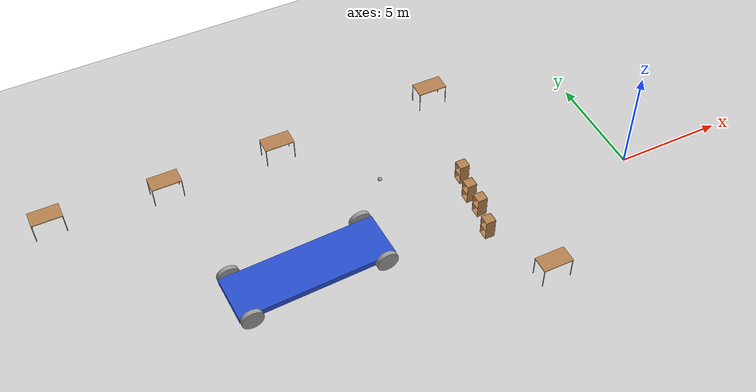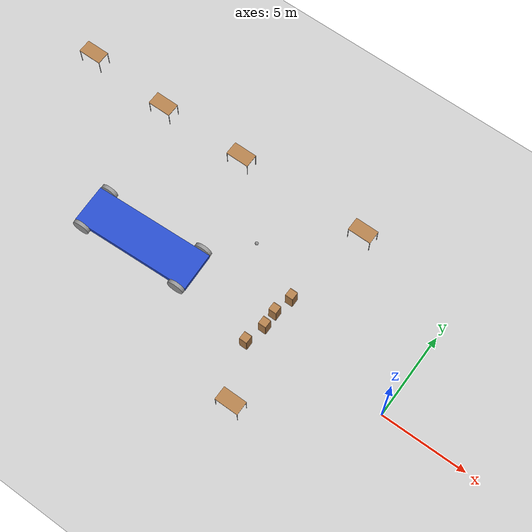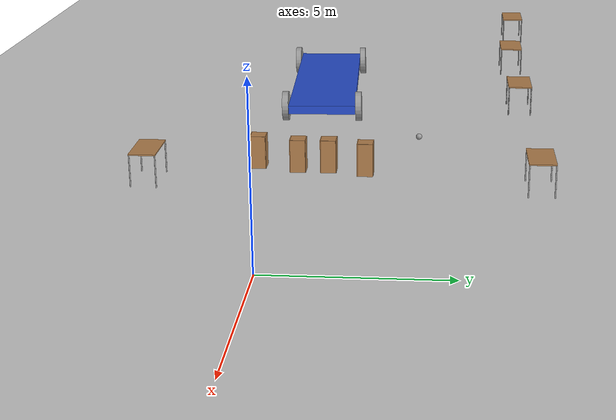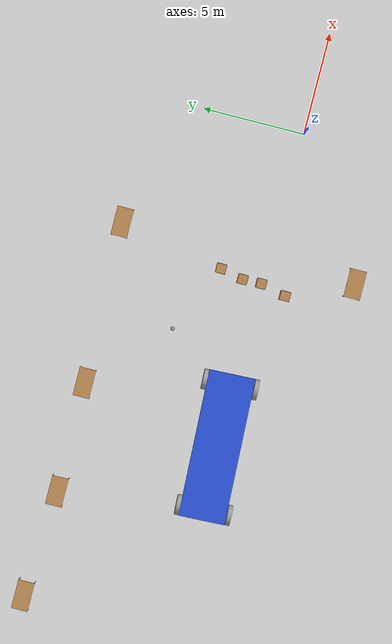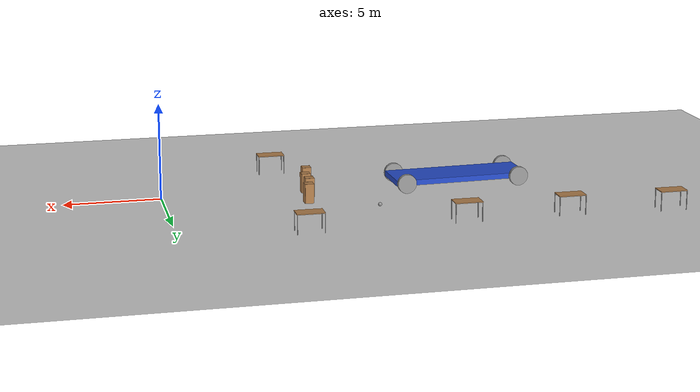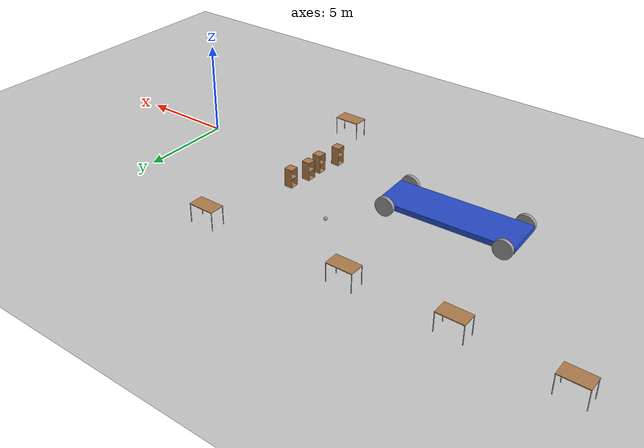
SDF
<sdf version="1.6">
 <world name="default">
  <model name="ground_plane">
   <static>1</static>
   <link name="link">
    <collision name="collision">
     <geometry><plane><normal>0 0 1</normal><size>100 100</size></plane></geometry>
     <surface><friction><ode><mu>100</mu><mu2>50</mu2></ode></friction></surface>
    </collision>
    <visual name="visual">
     <cast_shadows>0</cast_shadows>
     <geometry><plane><normal>0 0 1</normal><size>100 100</size></plane></geometry>
     <material>
      <script><uri>file://media/materials/scripts/gazebo.material</uri><name>Gazebo/Grey</name></script>
     </material>
    </visual>
   </link>
  </model>
  <model name="big_cart_0_clone">
   <link name="link_0">
    <inertial>
     <mass>4.6866</mass>
     <inertia><ixx>2.0216</ixx><ixy>0</ixy><ixz>0</ixz><iyy>20.0752</iyy><iyz>0</iyz><izz>22.0311</izz></inertia>
    </inertial>
    <visual name="visual">
     <geometry><box><size>7.16364 2.25661 0.28988</size></box></geometry>
     <material>
      <lighting>1</lighting>
      <script><uri>file://media/materials/scripts/gazebo.material</uri><name>Gazebo/Blue</name></script>
      <ambient>0.9 0.002 0 1</ambient>
      <diffuse>0.9 0.002 0.01 0.9</diffuse>
      <specular>0.01 0.01 0.01 1</specular>
      <emissive>0 0 0 1</emissive>
      <shader type="vertex"><normal_map>__default__</normal_map></shader>
     </material>
    </visual>
    <visual name="ModelPreview_0::link_0::visual_1">
     <geometry><box><size>7.16364 2.25661 0.28988</size></box></geometry>
     <material>
      <lighting>1</lighting>
      <script><uri>file://media/materials/scripts/gazebo.material</uri><name>Gazebo/Blue</name></script>
      <ambient>0.09 0.09 0.6 0.7</ambient>
      <diffuse>0.9 0.9 0.9 0.9</diffuse>
      <specular>0.01 0.01 0.01 1</specular>
      <emissive>0 0 0 1</emissive>
      <shader type="vertex"><normal_map>__default__</normal_map></shader>
     </material>
    </visual>
    <collision name="collision">
     <geometry><box><size>7.16364 2.25661 0.28988</size></box></geometry>
     <surface>
      <friction>
       <ode><mu>1</mu><mu2>1</mu2><fdir1>0 0 0</fdir1><slip1>0</slip1><slip2>0</slip2></ode>
       <torsional>
        <coefficient>1</coefficient>
        <patch_radius>0</patch_radius>
        <surface_radius>0</surface_radius>
        <use_patch_radius>1</use_patch_radius>
        <ode><slip>0</slip></ode>
       </torsional>
      </friction>
      <bounce><restitution_coefficient>0</restitution_coefficient><threshold>1e+06</threshold></bounce>
      <contact>
       <collide_without_contact>0</collide_without_contact>
       <collide_without_contact_bitmask>1</collide_without_contact_bitmask>
       <collide_bitmask>1</collide_bitmask>
       <ode>
        <soft_cfm>0</soft_cfm>
        <soft_erp>0.2</soft_erp>
        <kp>1e+13</kp>
        <kd>1</kd>
        <max_vel>0.01</max_vel>
        <min_depth>0</min_depth>
       </ode>
       <bullet>
        <split_impulse>1</split_impulse>
        <split_impulse_penetration_threshold>-0.01</split_impulse_penetration_threshold>
        <soft_cfm>0</soft_cfm>
        <soft_erp>0.2</soft_erp>
        <kp>1e+13</kp>
        <kd>1</kd>
       </bullet>
      </contact>
     </surface>
    </collision>
   </link>
   <link name="link_1_clone_clone_clone">
    <pose>-3.08182 1.24423 0 -1.59621 0 0</pose>
    <inertial>
     <mass>0.206504</mass>
     <inertia>
      <ixx>0.0136404</ixx>
      <ixy>0</ixy>
      <ixz>0</ixz>
      <iyy>0.0136404</iyy>
      <iyz>0</iyz>
      <izz>0.0258131</izz>
     </inertia>
    </inertial>
    <visual name="visual">
     <geometry><cylinder><radius>0.5</radius><length>0.206502</length></cylinder></geometry>
     <material>
      <lighting>1</lighting>
      <script><uri>file://media/materials/scripts/gazebo.material</uri><name>Gazebo/Grey</name></script>
      <ambient>0.5 0.5 0.5 1</ambient>
      <diffuse>0.9 0.9 0.9 1</diffuse>
      <specular>0.01 0.01 0.01 1</specular>
      <emissive>0 0 0 1</emissive>
      <shader type="vertex"><normal_map>__default__</normal_map></shader>
     </material>
    </visual>
    <collision name="collision">
     <geometry><cylinder><radius>0.5</radius><length>0.206502</length></cylinder></geometry>
     <surface>
      <friction>
       <ode><mu>1</mu><mu2>1</mu2><fdir1>0 0 0</fdir1><slip1>0</slip1><slip2>0</slip2></ode>
       <torsional>
        <coefficient>1</coefficient>
        <patch_radius>0</patch_radius>
        <surface_radius>0</surface_radius>
        <use_patch_radius>1</use_patch_radius>
        <ode><slip>0</slip></ode>
       </torsional>
      </friction>
      <bounce><restitution_coefficient>0</restitution_coefficient><threshold>1e+06</threshold></bounce>
      <contact>
       <collide_without_contact>0</collide_without_contact>
       <collide_without_contact_bitmask>1</collide_without_contact_bitmask>
       <collide_bitmask>1</collide_bitmask>
       <ode>
        <soft_cfm>0</soft_cfm>
        <soft_erp>0.2</soft_erp>
        <kp>1e+13</kp>
        <kd>1</kd>
        <max_vel>0.01</max_vel>
        <min_depth>0</min_depth>
       </ode>
       <bullet>
        <split_impulse>1</split_impulse>
        <split_impulse_penetration_threshold>-0.01</split_impulse_penetration_threshold>
        <soft_cfm>0</soft_cfm>
        <soft_erp>0.2</soft_erp>
        <kp>1e+13</kp>
        <kd>1</kd>
       </bullet>
      </contact>
     </surface>
    </collision>
   </link>
   <link name="link_1_clone_clone_clone_1">
    <pose>3.08182 -1.24423 0 -1.59621 0 0</pose>
    <inertial>
     <mass>0.206504</mass>
     <inertia>
      <ixx>0.0136404</ixx>
      <ixy>0</ixy>
      <ixz>0</ixz>
      <iyy>0.0136404</iyy>
      <iyz>0</iyz>
      <izz>0.0258131</izz>
     </inertia>
    </inertial>
    <visual name="visual">
     <geometry><cylinder><radius>0.5</radius><length>0.206502</length></cylinder></geometry>
     <material>
      <lighting>1</lighting>
      <script><uri>file://media/materials/scripts/gazebo.material</uri><name>Gazebo/Grey</name></script>
      <ambient>0.5 0.5 0.5 1</ambient>
      <diffuse>0.9 0.9 0.9 1</diffuse>
      <specular>0.01 0.01 0.01 1</specular>
      <emissive>0 0 0 1</emissive>
      <shader type="vertex"><normal_map>__default__</normal_map></shader>
     </material>
    </visual>
    <collision name="collision">
     <geometry><cylinder><radius>0.5</radius><length>0.206502</length></cylinder></geometry>
     <surface>
      <friction>
       <ode><mu>1</mu><mu2>1</mu2><fdir1>0 0 0</fdir1><slip1>0</slip1><slip2>0</slip2></ode>
       <torsional>
        <coefficient>1</coefficient>
        <patch_radius>0</patch_radius>
        <surface_radius>0</surface_radius>
        <use_patch_radius>1</use_patch_radius>
        <ode><slip>0</slip></ode>
       </torsional>
      </friction>
      <bounce><restitution_coefficient>0</restitution_coefficient><threshold>1e+06</threshold></bounce>
      <contact>
       <collide_without_contact>0</collide_without_contact>
       <collide_without_contact_bitmask>1</collide_without_contact_bitmask>
       <collide_bitmask>1</collide_bitmask>
       <ode>
        <soft_cfm>0</soft_cfm>
        <soft_erp>0.2</soft_erp>
        <kp>1e+13</kp>
        <kd>1</kd>
        <max_vel>0.01</max_vel>
        <min_depth>0</min_depth>
       </ode>
       <bullet>
        <split_impulse>1</split_impulse>
        <split_impulse_penetration_threshold>-0.01</split_impulse_penetration_threshold>
        <soft_cfm>0</soft_cfm>
        <soft_erp>0.2</soft_erp>
        <kp>1e+13</kp>
        <kd>1</kd>
       </bullet>
      </contact>
     </surface>
    </collision>
   </link>
   <link name="link_1_clone_clone_clone_1_clone">
    <pose>3.08182 1.24423 0 -1.59621 0 0</pose>
    <inertial>
     <mass>0.206504</mass>
     <inertia>
      <ixx>0.0136404</ixx>
      <ixy>0</ixy>
      <ixz>0</ixz>
      <iyy>0.0136404</iyy>
      <iyz>0</iyz>
      <izz>0.0258131</izz>
     </inertia>
    </inertial>
    <visual name="visual">
     <geometry><cylinder><radius>0.5</radius><length>0.206502</length></cylinder></geometry>
     <material>
      <lighting>1</lighting>
      <script><uri>file://media/materials/scripts/gazebo.material</uri><name>Gazebo/Grey</name></script>
      <ambient>0.5 0.5 0.5 1</ambient>
      <diffuse>0.9 0.9 0.9 1</diffuse>
      <specular>0.01 0.01 0.01 1</specular>
      <emissive>0 0 0 1</emissive>
      <shader type="vertex"><normal_map>__default__</normal_map></shader>
     </material>
    </visual>
    <collision name="collision">
     <geometry><cylinder><radius>0.5</radius><length>0.206502</length></cylinder></geometry>
     <surface>
      <friction>
       <ode><mu>1</mu><mu2>1</mu2><fdir1>0 0 0</fdir1><slip1>0</slip1><slip2>0</slip2></ode>
       <torsional>
        <coefficient>1</coefficient>
        <patch_radius>0</patch_radius>
        <surface_radius>0</surface_radius>
        <use_patch_radius>1</use_patch_radius>
        <ode><slip>0</slip></ode>
       </torsional>
      </friction>
      <bounce><restitution_coefficient>0</restitution_coefficient><threshold>1e+06</threshold></bounce>
      <contact>
       <collide_without_contact>0</collide_without_contact>
       <collide_without_contact_bitmask>1</collide_without_contact_bitmask>
       <collide_bitmask>1</collide_bitmask>
       <ode>
        <soft_cfm>0</soft_cfm>
        <soft_erp>0.2</soft_erp>
        <kp>1e+13</kp>
        <kd>1</kd>
        <max_vel>0.01</max_vel>
        <min_depth>0</min_depth>
       </ode>
       <bullet>
        <split_impulse>1</split_impulse>
        <split_impulse_penetration_threshold>-0.01</split_impulse_penetration_threshold>
        <soft_cfm>0</soft_cfm>
        <soft_erp>0.2</soft_erp>
        <kp>1e+13</kp>
        <kd>1</kd>
       </bullet>
      </contact>
     </surface>
    </collision>
   </link>
   <link name="link_1_clone_clone_clone_clone">
    <pose>-3.08182 -1.24423 0 -1.59621 0 0</pose>
    <inertial>
     <mass>0.206504</mass>
     <inertia>
      <ixx>0.0136404</ixx>
      <ixy>0</ixy>
      <ixz>0</ixz>
      <iyy>0.0136404</iyy>
      <iyz>0</iyz>
      <izz>0.0258131</izz>
     </inertia>
    </inertial>
    <visual name="visual">
     <geometry><cylinder><radius>0.5</radius><length>0.206502</length></cylinder></geometry>
     <material>
      <lighting>1</lighting>
      <script><uri>file://media/materials/scripts/gazebo.material</uri><name>Gazebo/Grey</name></script>
      <ambient>0.5 0.5 0.5 1</ambient>
      <diffuse>0.9 0.9 0.9 1</diffuse>
      <specular>0.01 0.01 0.01 1</specular>
      <emissive>0 0 0 1</emissive>
      <shader type="vertex"><normal_map>__default__</normal_map></shader>
     </material>
    </visual>
    <collision name="collision">
     <geometry><cylinder><radius>0.5</radius><length>0.206502</length></cylinder></geometry>
     <surface>
      <friction>
       <ode><mu>1</mu><mu2>1</mu2><fdir1>0 0 0</fdir1><slip1>0</slip1><slip2>0</slip2></ode>
       <torsional>
        <coefficient>1</coefficient>
        <patch_radius>0</patch_radius>
        <surface_radius>0</surface_radius>
        <use_patch_radius>1</use_patch_radius>
        <ode><slip>0</slip></ode>
       </torsional>
      </friction>
      <bounce><restitution_coefficient>0</restitution_coefficient><threshold>1e+06</threshold></bounce>
      <contact>
       <collide_without_contact>0</collide_without_contact>
       <collide_without_contact_bitmask>1</collide_without_contact_bitmask>
       <collide_bitmask>1</collide_bitmask>
       <ode>
        <soft_cfm>0</soft_cfm>
        <soft_erp>0.2</soft_erp>
        <kp>1e+13</kp>
        <kd>1</kd>
        <max_vel>0.01</max_vel>
        <min_depth>0</min_depth>
       </ode>
       <bullet>
        <split_impulse>1</split_impulse>
        <split_impulse_penetration_threshold>-0.01</split_impulse_penetration_threshold>
        <soft_cfm>0</soft_cfm>
        <soft_erp>0.2</soft_erp>
        <kp>1e+13</kp>
        <kd>1</kd>
       </bullet>
      </contact>
     </surface>
    </collision>
   </link>
   <joint name="link_0_JOINT_4" type="revolute">
    <parent>link_0</parent>
    <child>link_1_clone_clone_clone</child>
    <axis>
     <xyz>0 0 1</xyz>
     <use_parent_model_frame>0</use_parent_model_frame>
     <limit>
      <lower>-1.79769e+308</lower>
      <upper>1.79769e+308</upper>
      <effort>-1</effort>
      <velocity>-1</velocity>
     </limit>
     <dynamics>
      <spring_reference>0</spring_reference>
      <spring_stiffness>0</spring_stiffness>
      <damping>0</damping>
     </dynamics>
    </axis>
    <physics>
     <ode><limit><cfm>0</cfm><erp>0.2</erp></limit><suspension><cfm>0</cfm><erp>0.2</erp></suspension></ode>
    </physics>
   </joint>
   <joint name="link_0_JOINT_6" type="revolute">
    <parent>link_0</parent>
    <child>link_1_clone_clone_clone_1</child>
    <axis>
     <xyz>0 0 1</xyz>
     <use_parent_model_frame>0</use_parent_model_frame>
     <limit>
      <lower>-1.79769e+308</lower>
      <upper>1.79769e+308</upper>
      <effort>-1</effort>
      <velocity>-1</velocity>
     </limit>
     <dynamics>
      <spring_reference>0</spring_reference>
      <spring_stiffness>0</spring_stiffness>
      <damping>0</damping>
     </dynamics>
    </axis>
    <physics>
     <ode><limit><cfm>0</cfm><erp>0.2</erp></limit><suspension><cfm>0</cfm><erp>0.2</erp></suspension></ode>
    </physics>
   </joint>
   <joint name="link_0_JOINT_7" type="revolute">
    <parent>link_0</parent>
    <child>link_1_clone_clone_clone_1_clone</child>
    <axis>
     <xyz>0 0 1</xyz>
     <use_parent_model_frame>0</use_parent_model_frame>
     <limit>
      <lower>-1.79769e+308</lower>
      <upper>1.79769e+308</upper>
      <effort>-1</effort>
      <velocity>-1</velocity>
     </limit>
     <dynamics>
      <spring_reference>0</spring_reference>
      <spring_stiffness>0</spring_stiffness>
      <damping>0</damping>
     </dynamics>
    </axis>
    <physics>
     <ode><limit><cfm>0</cfm><erp>0.2</erp></limit><suspension><cfm>0</cfm><erp>0.2</erp></suspension></ode>
    </physics>
   </joint>
   <joint name="link_0_JOINT_8" type="revolute">
    <parent>link_0</parent>
    <child>link_1_clone_clone_clone_clone</child>
    <axis>
     <xyz>0 0 1</xyz>
     <use_parent_model_frame>0</use_parent_model_frame>
     <limit>
      <lower>-1.79769e+308</lower>
      <upper>1.79769e+308</upper>
      <effort>-1</effort>
      <velocity>-1</velocity>
     </limit>
     <dynamics>
      <spring_reference>0</spring_reference>
      <spring_stiffness>0</spring_stiffness>
      <damping>0</damping>
     </dynamics>
    </axis>
    <physics>
     <ode><limit><cfm>0</cfm><erp>0.2</erp></limit><suspension><cfm>0</cfm><erp>0.2</erp></suspension></ode>
    </physics>
   </joint>
   <static>0</static>
   <pose>-15.627 0.320338 0.502451 8e-06 -0 -3.09924</pose>
  </model>
  <model name="cabinet">
   <static>1</static>
   <link name="cabinet_bottom_plate">
    <inertial>
     <pose>0 0 -1 0 -0 0</pose>
     <inertia><ixx>2.05</ixx><ixy>0</ixy><ixz>0</ixz><iyy>2.05</iyy><iyz>0</iyz><izz>2.05</izz></inertia>
     <mass>25</mass>
    </inertial>
    <collision name="cabinet_bottom_plate_geom">
     <pose>0 0 0.01 0 -0 0</pose>
     <geometry><box><size>0.45 0.45 0.02</size></box></geometry>
    </collision>
    <visual name="cabinet_bottom_plate_geom_visual">
     <pose>0 0 0.01 0 -0 0</pose>
     <geometry><box><size>0.45 0.45 0.02</size></box></geometry>
     <material>
      <script><uri>file://media/materials/scripts/gazebo.material</uri><name>Gazebo/Wood</name></script>
     </material>
    </visual>
    <collision name="cabinet_bottom_plate_geom_cabinet_back_plate">
     <pose>0.235 0 0.51 0 -0 0</pose>
     <geometry><box><size>0.02 0.45 1.02</size></box></geometry>
    </collision>
    <visual name="cabinet_bottom_plate_geom_cabinet_back_plate_visual">
     <pose>0.235 0 0.51 0 -0 0</pose>
     <geometry><box><size>0.02 0.45 1.02</size></box></geometry>
     <material>
      <script><uri>file://media/materials/scripts/gazebo.material</uri><name>Gazebo/Wood</name></script>
     </material>
    </visual>
    <collision name="cabinet_bottom_plate_geom_cabinet_left_plate">
     <pose>0 0.235 0.51 0 -0 0</pose>
     <geometry><box><size>0.45 0.02 1.02</size></box></geometry>
    </collision>
    <visual name="cabinet_bottom_plate_geom_cabinet_left_plate_visual">
     <pose>0 0.235 0.51 0 -0 0</pose>
     <geometry><box><size>0.45 0.02 1.02</size></box></geometry>
     <material>
      <script><uri>file://media/materials/scripts/gazebo.material</uri><name>Gazebo/Wood</name></script>
     </material>
    </visual>
    <collision name="cabinet_bottom_plate_geom_cabinet_middle_plate">
     <pose>0 0 0.51 0 -0 0</pose>
     <geometry><box><size>0.45 0.45 0.02</size></box></geometry>
    </collision>
    <visual name="cabinet_bottom_plate_geom_cabinet_middle_plate_visual">
     <pose>0 0 0.51 0 -0 0</pose>
     <geometry><box><size>0.45 0.45 0.02</size></box></geometry>
     <material>
      <script><uri>file://media/materials/scripts/gazebo.material</uri><name>Gazebo/Wood</name></script>
     </material>
    </visual>
    <collision name="cabinet_bottom_plate_geom_cabinet_right_plate">
     <pose>0 -0.235 0.51 0 -0 0</pose>
     <geometry><box><size>0.45 0.02 1.02</size></box></geometry>
    </collision>
    <visual name="cabinet_bottom_plate_geom_cabinet_right_plate_visual">
     <pose>0 -0.235 0.51 0 -0 0</pose>
     <geometry><box><size>0.45 0.02 1.02</size></box></geometry>
     <material>
      <script><uri>file://media/materials/scripts/gazebo.material</uri><name>Gazebo/Wood</name></script>
     </material>
    </visual>
    <collision name="cabinet_bottom_plate_geom_cabinet_top_plate">
     <pose>0 0 1.01 0 -0 0</pose>
     <geometry><box><size>0.45 0.45 0.02</size></box></geometry>
    </collision>
    <visual name="cabinet_bottom_plate_geom_cabinet_top_plate_visual">
     <pose>0 0 1.01 0 -0 0</pose>
     <geometry><box><size>0.45 0.45 0.02</size></box></geometry>
     <material>
      <script><uri>file://media/materials/scripts/gazebo.material</uri><name>Gazebo/Wood</name></script>
     </material>
    </visual>
   </link>
   <pose>-7.78993 -1.02412 0 0 -0 0</pose>
  </model>
  <model name="cabinet_clone">
   <static>1</static>
   <link name="cabinet_bottom_plate">
    <inertial>
     <pose>0 0 -1 0 -0 0</pose>
     <inertia><ixx>2.05</ixx><ixy>0</ixy><ixz>0</ixz><iyy>2.05</iyy><iyz>0</iyz><izz>2.05</izz></inertia>
     <mass>25</mass>
    </inertial>
    <collision name="cabinet_bottom_plate_geom">
     <pose>0 0 0.01 0 -0 0</pose>
     <geometry><box><size>0.45 0.45 0.02</size></box></geometry>
    </collision>
    <visual name="cabinet_bottom_plate_geom_visual">
     <pose>0 0 0.01 0 -0 0</pose>
     <geometry><box><size>0.45 0.45 0.02</size></box></geometry>
     <material>
      <script><uri>file://media/materials/scripts/gazebo.material</uri><name>Gazebo/Wood</name></script>
     </material>
    </visual>
    <collision name="cabinet_bottom_plate_geom_cabinet_back_plate">
     <pose>0.235 0 0.51 0 -0 0</pose>
     <geometry><box><size>0.02 0.45 1.02</size></box></geometry>
    </collision>
    <visual name="cabinet_bottom_plate_geom_cabinet_back_plate_visual">
     <pose>0.235 0 0.51 0 -0 0</pose>
     <geometry><box><size>0.02 0.45 1.02</size></box></geometry>
     <material>
      <script><uri>file://media/materials/scripts/gazebo.material</uri><name>Gazebo/Wood</name></script>
     </material>
    </visual>
    <collision name="cabinet_bottom_plate_geom_cabinet_left_plate">
     <pose>0 0.235 0.51 0 -0 0</pose>
     <geometry><box><size>0.45 0.02 1.02</size></box></geometry>
    </collision>
    <visual name="cabinet_bottom_plate_geom_cabinet_left_plate_visual">
     <pose>0 0.235 0.51 0 -0 0</pose>
     <geometry><box><size>0.45 0.02 1.02</size></box></geometry>
     <material>
      <script><uri>file://media/materials/scripts/gazebo.material</uri><name>Gazebo/Wood</name></script>
     </material>
    </visual>
    <collision name="cabinet_bottom_plate_geom_cabinet_middle_plate">
     <pose>0 0 0.51 0 -0 0</pose>
     <geometry><box><size>0.45 0.45 0.02</size></box></geometry>
    </collision>
    <visual name="cabinet_bottom_plate_geom_cabinet_middle_plate_visual">
     <pose>0 0 0.51 0 -0 0</pose>
     <geometry><box><size>0.45 0.45 0.02</size></box></geometry>
     <material>
      <script><uri>file://media/materials/scripts/gazebo.material</uri><name>Gazebo/Wood</name></script>
     </material>
    </visual>
    <collision name="cabinet_bottom_plate_geom_cabinet_right_plate">
     <pose>0 -0.235 0.51 0 -0 0</pose>
     <geometry><box><size>0.45 0.02 1.02</size></box></geometry>
    </collision>
    <visual name="cabinet_bottom_plate_geom_cabinet_right_plate_visual">
     <pose>0 -0.235 0.51 0 -0 0</pose>
     <geometry><box><size>0.45 0.02 1.02</size></box></geometry>
     <material>
      <script><uri>file://media/materials/scripts/gazebo.material</uri><name>Gazebo/Wood</name></script>
     </material>
    </visual>
    <collision name="cabinet_bottom_plate_geom_cabinet_top_plate">
     <pose>0 0 1.01 0 -0 0</pose>
     <geometry><box><size>0.45 0.45 0.02</size></box></geometry>
    </collision>
    <visual name="cabinet_bottom_plate_geom_cabinet_top_plate_visual">
     <pose>0 0 1.01 0 -0 0</pose>
     <geometry><box><size>0.45 0.45 0.02</size></box></geometry>
     <material>
      <script><uri>file://media/materials/scripts/gazebo.material</uri><name>Gazebo/Wood</name></script>
     </material>
    </visual>
   </link>
   <pose>-7.50049 0.219063 0 0 -0 0</pose>
  </model>
  <model name="cabinet_clone_0">
   <static>1</static>
   <link name="cabinet_bottom_plate">
    <inertial>
     <pose>0 0 -1 0 -0 0</pose>
     <inertia><ixx>2.05</ixx><ixy>0</ixy><ixz>0</ixz><iyy>2.05</iyy><iyz>0</iyz><izz>2.05</izz></inertia>
     <mass>25</mass>
    </inertial>
    <collision name="cabinet_bottom_plate_geom">
     <pose>0 0 0.01 0 -0 0</pose>
     <geometry><box><size>0.45 0.45 0.02</size></box></geometry>
    </collision>
    <visual name="cabinet_bottom_plate_geom_visual">
     <pose>0 0 0.01 0 -0 0</pose>
     <geometry><box><size>0.45 0.45 0.02</size></box></geometry>
     <material>
      <script><uri>file://media/materials/scripts/gazebo.material</uri><name>Gazebo/Wood</name></script>
     </material>
    </visual>
    <collision name="cabinet_bottom_plate_geom_cabinet_back_plate">
     <pose>0.235 0 0.51 0 -0 0</pose>
     <geometry><box><size>0.02 0.45 1.02</size></box></geometry>
    </collision>
    <visual name="cabinet_bottom_plate_geom_cabinet_back_plate_visual">
     <pose>0.235 0 0.51 0 -0 0</pose>
     <geometry><box><size>0.02 0.45 1.02</size></box></geometry>
     <material>
      <script><uri>file://media/materials/scripts/gazebo.material</uri><name>Gazebo/Wood</name></script>
     </material>
    </visual>
    <collision name="cabinet_bottom_plate_geom_cabinet_left_plate">
     <pose>0 0.235 0.51 0 -0 0</pose>
     <geometry><box><size>0.45 0.02 1.02</size></box></geometry>
    </collision>
    <visual name="cabinet_bottom_plate_geom_cabinet_left_plate_visual">
     <pose>0 0.235 0.51 0 -0 0</pose>
     <geometry><box><size>0.45 0.02 1.02</size></box></geometry>
     <material>
      <script><uri>file://media/materials/scripts/gazebo.material</uri><name>Gazebo/Wood</name></script>
     </material>
    </visual>
    <collision name="cabinet_bottom_plate_geom_cabinet_middle_plate">
     <pose>0 0 0.51 0 -0 0</pose>
     <geometry><box><size>0.45 0.45 0.02</size></box></geometry>
    </collision>
    <visual name="cabinet_bottom_plate_geom_cabinet_middle_plate_visual">
     <pose>0 0 0.51 0 -0 0</pose>
     <geometry><box><size>0.45 0.45 0.02</size></box></geometry>
     <material>
      <script><uri>file://media/materials/scripts/gazebo.material</uri><name>Gazebo/Wood</name></script>
     </material>
    </visual>
    <collision name="cabinet_bottom_plate_geom_cabinet_right_plate">
     <pose>0 -0.235 0.51 0 -0 0</pose>
     <geometry><box><size>0.45 0.02 1.02</size></box></geometry>
    </collision>
    <visual name="cabinet_bottom_plate_geom_cabinet_right_plate_visual">
     <pose>0 -0.235 0.51 0 -0 0</pose>
     <geometry><box><size>0.45 0.02 1.02</size></box></geometry>
     <material>
      <script><uri>file://media/materials/scripts/gazebo.material</uri><name>Gazebo/Wood</name></script>
     </material>
    </visual>
    <collision name="cabinet_bottom_plate_geom_cabinet_top_plate">
     <pose>0 0 1.01 0 -0 0</pose>
     <geometry><box><size>0.45 0.45 0.02</size></box></geometry>
    </collision>
    <visual name="cabinet_bottom_plate_geom_cabinet_top_plate_visual">
     <pose>0 0 1.01 0 -0 0</pose>
     <geometry><box><size>0.45 0.45 0.02</size></box></geometry>
     <material>
      <script><uri>file://media/materials/scripts/gazebo.material</uri><name>Gazebo/Wood</name></script>
     </material>
    </visual>
   </link>
   <pose>-7.52207 1.14039 0 0 -0 0</pose>
  </model>
  <model name="cabinet_clone_1">
   <static>1</static>
   <link name="cabinet_bottom_plate">
    <inertial>
     <pose>0 0 -1 0 -0 0</pose>
     <inertia><ixx>2.05</ixx><ixy>0</ixy><ixz>0</ixz><iyy>2.05</iyy><iyz>0</iyz><izz>2.05</izz></inertia>
     <mass>25</mass>
    </inertial>
    <collision name="cabinet_bottom_plate_geom">
     <pose>0 0 0.01 0 -0 0</pose>
     <geometry><box><size>0.45 0.45 0.02</size></box></geometry>
    </collision>
    <visual name="cabinet_bottom_plate_geom_visual">
     <pose>0 0 0.01 0 -0 0</pose>
     <geometry><box><size>0.45 0.45 0.02</size></box></geometry>
     <material>
      <script><uri>file://media/materials/scripts/gazebo.material</uri><name>Gazebo/Wood</name></script>
     </material>
    </visual>
    <collision name="cabinet_bottom_plate_geom_cabinet_back_plate">
     <pose>0.235 0 0.51 0 -0 0</pose>
     <geometry><box><size>0.02 0.45 1.02</size></box></geometry>
    </collision>
    <visual name="cabinet_bottom_plate_geom_cabinet_back_plate_visual">
     <pose>0.235 0 0.51 0 -0 0</pose>
     <geometry><box><size>0.02 0.45 1.02</size></box></geometry>
     <material>
      <script><uri>file://media/materials/scripts/gazebo.material</uri><name>Gazebo/Wood</name></script>
     </material>
    </visual>
    <collision name="cabinet_bottom_plate_geom_cabinet_left_plate">
     <pose>0 0.235 0.51 0 -0 0</pose>
     <geometry><box><size>0.45 0.02 1.02</size></box></geometry>
    </collision>
    <visual name="cabinet_bottom_plate_geom_cabinet_left_plate_visual">
     <pose>0 0.235 0.51 0 -0 0</pose>
     <geometry><box><size>0.45 0.02 1.02</size></box></geometry>
     <material>
      <script><uri>file://media/materials/scripts/gazebo.material</uri><name>Gazebo/Wood</name></script>
     </material>
    </visual>
    <collision name="cabinet_bottom_plate_geom_cabinet_middle_plate">
     <pose>0 0 0.51 0 -0 0</pose>
     <geometry><box><size>0.45 0.45 0.02</size></box></geometry>
    </collision>
    <visual name="cabinet_bottom_plate_geom_cabinet_middle_plate_visual">
     <pose>0 0 0.51 0 -0 0</pose>
     <geometry><box><size>0.45 0.45 0.02</size></box></geometry>
     <material>
      <script><uri>file://media/materials/scripts/gazebo.material</uri><name>Gazebo/Wood</name></script>
     </material>
    </visual>
    <collision name="cabinet_bottom_plate_geom_cabinet_right_plate">
     <pose>0 -0.235 0.51 0 -0 0</pose>
     <geometry><box><size>0.45 0.02 1.02</size></box></geometry>
    </collision>
    <visual name="cabinet_bottom_plate_geom_cabinet_right_plate_visual">
     <pose>0 -0.235 0.51 0 -0 0</pose>
     <geometry><box><size>0.45 0.02 1.02</size></box></geometry>
     <material>
      <script><uri>file://media/materials/scripts/gazebo.material</uri><name>Gazebo/Wood</name></script>
     </material>
    </visual>
    <collision name="cabinet_bottom_plate_geom_cabinet_top_plate">
     <pose>0 0 1.01 0 -0 0</pose>
     <geometry><box><size>0.45 0.45 0.02</size></box></geometry>
    </collision>
    <visual name="cabinet_bottom_plate_geom_cabinet_top_plate_visual">
     <pose>0 0 1.01 0 -0 0</pose>
     <geometry><box><size>0.45 0.45 0.02</size></box></geometry>
     <material>
      <script><uri>file://media/materials/scripts/gazebo.material</uri><name>Gazebo/Wood</name></script>
     </material>
    </visual>
   </link>
   <pose>-7.27509 2.26742 0 0 -0 0</pose>
  </model>
  <model name="table_clone_2">
   <static>0</static>
   <link name="link">
    <collision name="surface">
     <pose>0 0 1 0 -0 0</pose>
     <geometry><box><size>1.5 0.8 0.03</size></box></geometry>
     <surface><friction><ode><mu>0.6</mu><mu2>0.6</mu2></ode></friction></surface>
    </collision>
    <visual name="visual1">
     <pose>0 0 1 0 -0 0</pose>
     <geometry><box><size>1.4 0.8 0.04</size></box></geometry>
     <material>
      <script><uri>file://media/materials/scripts/gazebo.material</uri><name>Gazebo/Wood</name></script>
     </material>
    </visual>
    <collision name="front_left_leg">
     <pose>0.68 0.38 0.5 0 -0 0</pose>
     <geometry><cylinder><radius>0.02</radius><length>1</length></cylinder></geometry>
    </collision>
    <visual name="front_left_leg">
     <pose>0.68 0.38 0.5 0 -0 0</pose>
     <geometry><cylinder><radius>0.02</radius><length>1</length></cylinder></geometry>
     <material>
      <script><uri>file://media/materials/scripts/gazebo.material</uri><name>Gazebo/Grey</name></script>
     </material>
    </visual>
    <collision name="front_right_leg">
     <pose>0.68 -0.38 0.5 0 -0 0</pose>
     <geometry><cylinder><radius>0.02</radius><length>1</length></cylinder></geometry>
    </collision>
    <visual name="front_right_leg">
     <pose>0.68 -0.38 0.5 0 -0 0</pose>
     <geometry><cylinder><radius>0.02</radius><length>1</length></cylinder></geometry>
     <material>
      <script><uri>file://media/materials/scripts/gazebo.material</uri><name>Gazebo/Grey</name></script>
     </material>
    </visual>
    <collision name="back_right_leg">
     <pose>-0.68 -0.38 0.5 0 -0 0</pose>
     <geometry><cylinder><radius>0.02</radius><length>1</length></cylinder></geometry>
    </collision>
    <visual name="back_right_leg">
     <pose>-0.68 -0.38 0.5 0 -0 0</pose>
     <geometry><cylinder><radius>0.02</radius><length>1</length></cylinder></geometry>
     <material>
      <script><uri>file://media/materials/scripts/gazebo.material</uri><name>Gazebo/Grey</name></script>
     </material>
    </visual>
    <collision name="back_left_leg">
     <pose>-0.68 0.38 0.5 0 -0 0</pose>
     <geometry><cylinder><radius>0.02</radius><length>1</length></cylinder></geometry>
    </collision>
    <visual name="back_left_leg">
     <pose>-0.68 0.38 0.5 0 -0 0</pose>
     <geometry><cylinder><radius>0.02</radius><length>1</length></cylinder></geometry>
     <material>
      <script><uri>file://media/materials/scripts/gazebo.material</uri><name>Gazebo/Grey</name></script>
     </material>
    </visual>
    <inertial>
     <inertia><ixx>1</ixx><ixy>0</ixy><ixz>0</ixz><iyy>1</iyy><iyz>0</iyz><izz>1</izz></inertia>
     <mass>1</mass>
    </inertial>
   </link>
   <pose>-6.40882 -4.12619 -1e-06 0 1e-06 0</pose>
  </model>
  <model name="table_clone_4">
   <static>0</static>
   <link name="link">
    <collision name="surface">
     <pose>0 0 1 0 -0 0</pose>
     <geometry><box><size>1.5 0.8 0.03</size></box></geometry>
     <surface><friction><ode><mu>0.6</mu><mu2>0.6</mu2></ode></friction></surface>
    </collision>
    <visual name="visual1">
     <pose>0 0 1 0 -0 0</pose>
     <geometry><box><size>1.4 0.8 0.04</size></box></geometry>
     <material>
      <script><uri>file://media/materials/scripts/gazebo.material</uri><name>Gazebo/Wood</name></script>
     </material>
    </visual>
    <collision name="front_left_leg">
     <pose>0.68 0.38 0.5 0 -0 0</pose>
     <geometry><cylinder><radius>0.02</radius><length>1</length></cylinder></geometry>
    </collision>
    <visual name="front_left_leg">
     <pose>0.68 0.38 0.5 0 -0 0</pose>
     <geometry><cylinder><radius>0.02</radius><length>1</length></cylinder></geometry>
     <material>
      <script><uri>file://media/materials/scripts/gazebo.material</uri><name>Gazebo/Grey</name></script>
     </material>
    </visual>
    <collision name="front_right_leg">
     <pose>0.68 -0.38 0.5 0 -0 0</pose>
     <geometry><cylinder><radius>0.02</radius><length>1</length></cylinder></geometry>
    </collision>
    <visual name="front_right_leg">
     <pose>0.68 -0.38 0.5 0 -0 0</pose>
     <geometry><cylinder><radius>0.02</radius><length>1</length></cylinder></geometry>
     <material>
      <script><uri>file://media/materials/scripts/gazebo.material</uri><name>Gazebo/Grey</name></script>
     </material>
    </visual>
    <collision name="back_right_leg">
     <pose>-0.68 -0.38 0.5 0 -0 0</pose>
     <geometry><cylinder><radius>0.02</radius><length>1</length></cylinder></geometry>
    </collision>
    <visual name="back_right_leg">
     <pose>-0.68 -0.38 0.5 0 -0 0</pose>
     <geometry><cylinder><radius>0.02</radius><length>1</length></cylinder></geometry>
     <material>
      <script><uri>file://media/materials/scripts/gazebo.material</uri><name>Gazebo/Grey</name></script>
     </material>
    </visual>
    <collision name="back_left_leg">
     <pose>-0.68 0.38 0.5 0 -0 0</pose>
     <geometry><cylinder><radius>0.02</radius><length>1</length></cylinder></geometry>
    </collision>
    <visual name="back_left_leg">
     <pose>-0.68 0.38 0.5 0 -0 0</pose>
     <geometry><cylinder><radius>0.02</radius><length>1</length></cylinder></geometry>
     <material>
      <script><uri>file://media/materials/scripts/gazebo.material</uri><name>Gazebo/Grey</name></script>
     </material>
    </visual>
    <inertial>
     <inertia><ixx>1</ixx><ixy>0</ixy><ixz>0</ixz><iyy>1</iyy><iyz>0</iyz><izz>1</izz></inertia>
     <mass>1</mass>
    </inertial>
   </link>
   <pose>-14.1971 7.23863 -1e-06 0 1e-06 0</pose>
  </model>
  <model name="table_clone_5">
   <static>0</static>
   <link name="link">
    <collision name="surface">
     <pose>0 0 1 0 -0 0</pose>
     <geometry><box><size>1.5 0.8 0.03</size></box></geometry>
     <surface><friction><ode><mu>0.6</mu><mu2>0.6</mu2></ode></friction></surface>
    </collision>
    <visual name="visual1">
     <pose>0 0 1 0 -0 0</pose>
     <geometry><box><size>1.4 0.8 0.04</size></box></geometry>
     <material>
      <script><uri>file://media/materials/scripts/gazebo.material</uri><name>Gazebo/Wood</name></script>
     </material>
    </visual>
    <collision name="front_left_leg">
     <pose>0.68 0.38 0.5 0 -0 0</pose>
     <geometry><cylinder><radius>0.02</radius><length>1</length></cylinder></geometry>
    </collision>
    <visual name="front_left_leg">
     <pose>0.68 0.38 0.5 0 -0 0</pose>
     <geometry><cylinder><radius>0.02</radius><length>1</length></cylinder></geometry>
     <material>
      <script><uri>file://media/materials/scripts/gazebo.material</uri><name>Gazebo/Grey</name></script>
     </material>
    </visual>
    <collision name="front_right_leg">
     <pose>0.68 -0.38 0.5 0 -0 0</pose>
     <geometry><cylinder><radius>0.02</radius><length>1</length></cylinder></geometry>
    </collision>
    <visual name="front_right_leg">
     <pose>0.68 -0.38 0.5 0 -0 0</pose>
     <geometry><cylinder><radius>0.02</radius><length>1</length></cylinder></geometry>
     <material>
      <script><uri>file://media/materials/scripts/gazebo.material</uri><name>Gazebo/Grey</name></script>
     </material>
    </visual>
    <collision name="back_right_leg">
     <pose>-0.68 -0.38 0.5 0 -0 0</pose>
     <geometry><cylinder><radius>0.02</radius><length>1</length></cylinder></geometry>
    </collision>
    <visual name="back_right_leg">
     <pose>-0.68 -0.38 0.5 0 -0 0</pose>
     <geometry><cylinder><radius>0.02</radius><length>1</length></cylinder></geometry>
     <material>
      <script><uri>file://media/materials/scripts/gazebo.material</uri><name>Gazebo/Grey</name></script>
     </material>
    </visual>
    <collision name="back_left_leg">
     <pose>-0.68 0.38 0.5 0 -0 0</pose>
     <geometry><cylinder><radius>0.02</radius><length>1</length></cylinder></geometry>
    </collision>
    <visual name="back_left_leg">
     <pose>-0.68 0.38 0.5 0 -0 0</pose>
     <geometry><cylinder><radius>0.02</radius><length>1</length></cylinder></geometry>
     <material>
      <script><uri>file://media/materials/scripts/gazebo.material</uri><name>Gazebo/Grey</name></script>
     </material>
    </visual>
    <inertial>
     <inertia><ixx>1</ixx><ixy>0</ixy><ixz>0</ixz><iyy>1</iyy><iyz>0</iyz><izz>1</izz></inertia>
     <mass>1</mass>
    </inertial>
   </link>
   <pose>-19.5564 7.21761 -1e-06 0 1e-06 0</pose>
  </model>
  <model name="table_clone_6">
   <static>0</static>
   <link name="link">
    <collision name="surface">
     <pose>0 0 1 0 -0 0</pose>
     <geometry><box><size>1.5 0.8 0.03</size></box></geometry>
     <surface><friction><ode><mu>0.6</mu><mu2>0.6</mu2></ode></friction></surface>
    </collision>
    <visual name="visual1">
     <pose>0 0 1 0 -0 0</pose>
     <geometry><box><size>1.4 0.8 0.04</size></box></geometry>
     <material>
      <script><uri>file://media/materials/scripts/gazebo.material</uri><name>Gazebo/Wood</name></script>
     </material>
    </visual>
    <collision name="front_left_leg">
     <pose>0.68 0.38 0.5 0 -0 0</pose>
     <geometry><cylinder><radius>0.02</radius><length>1</length></cylinder></geometry>
    </collision>
    <visual name="front_left_leg">
     <pose>0.68 0.38 0.5 0 -0 0</pose>
     <geometry><cylinder><radius>0.02</radius><length>1</length></cylinder></geometry>
     <material>
      <script><uri>file://media/materials/scripts/gazebo.material</uri><name>Gazebo/Grey</name></script>
     </material>
    </visual>
    <collision name="front_right_leg">
     <pose>0.68 -0.38 0.5 0 -0 0</pose>
     <geometry><cylinder><radius>0.02</radius><length>1</length></cylinder></geometry>
    </collision>
    <visual name="front_right_leg">
     <pose>0.68 -0.38 0.5 0 -0 0</pose>
     <geometry><cylinder><radius>0.02</radius><length>1</length></cylinder></geometry>
     <material>
      <script><uri>file://media/materials/scripts/gazebo.material</uri><name>Gazebo/Grey</name></script>
     </material>
    </visual>
    <collision name="back_right_leg">
     <pose>-0.68 -0.38 0.5 0 -0 0</pose>
     <geometry><cylinder><radius>0.02</radius><length>1</length></cylinder></geometry>
    </collision>
    <visual name="back_right_leg">
     <pose>-0.68 -0.38 0.5 0 -0 0</pose>
     <geometry><cylinder><radius>0.02</radius><length>1</length></cylinder></geometry>
     <material>
      <script><uri>file://media/materials/scripts/gazebo.material</uri><name>Gazebo/Grey</name></script>
     </material>
    </visual>
    <collision name="back_left_leg">
     <pose>-0.68 0.38 0.5 0 -0 0</pose>
     <geometry><cylinder><radius>0.02</radius><length>1</length></cylinder></geometry>
    </collision>
    <visual name="back_left_leg">
     <pose>-0.68 0.38 0.5 0 -0 0</pose>
     <geometry><cylinder><radius>0.02</radius><length>1</length></cylinder></geometry>
     <material>
      <script><uri>file://media/materials/scripts/gazebo.material</uri><name>Gazebo/Grey</name></script>
     </material>
    </visual>
    <inertial>
     <inertia><ixx>1</ixx><ixy>0</ixy><ixz>0</ixz><iyy>1</iyy><iyz>0</iyz><izz>1</izz></inertia>
     <mass>1</mass>
    </inertial>
   </link>
   <pose>-24.7934 7.54856 -1e-06 0 1e-06 0</pose>
  </model>
  <model name="table_clone_8">
   <static>0</static>
   <link name="link">
    <collision name="surface">
     <pose>0 0 1 0 -0 0</pose>
     <geometry><box><size>1.5 0.8 0.03</size></box></geometry>
     <surface><friction><ode><mu>0.6</mu><mu2>0.6</mu2></ode></friction></surface>
    </collision>
    <visual name="visual1">
     <pose>0 0 1 0 -0 0</pose>
     <geometry><box><size>1.4 0.8 0.04</size></box></geometry>
     <material>
      <script><uri>file://media/materials/scripts/gazebo.material</uri><name>Gazebo/Wood</name></script>
     </material>
    </visual>
    <collision name="front_left_leg">
     <pose>0.68 0.38 0.5 0 -0 0</pose>
     <geometry><cylinder><radius>0.02</radius><length>1</length></cylinder></geometry>
    </collision>
    <visual name="front_left_leg">
     <pose>0.68 0.38 0.5 0 -0 0</pose>
     <geometry><cylinder><radius>0.02</radius><length>1</length></cylinder></geometry>
     <material>
      <script><uri>file://media/materials/scripts/gazebo.material</uri><name>Gazebo/Grey</name></script>
     </material>
    </visual>
    <collision name="front_right_leg">
     <pose>0.68 -0.38 0.5 0 -0 0</pose>
     <geometry><cylinder><radius>0.02</radius><length>1</length></cylinder></geometry>
    </collision>
    <visual name="front_right_leg">
     <pose>0.68 -0.38 0.5 0 -0 0</pose>
     <geometry><cylinder><radius>0.02</radius><length>1</length></cylinder></geometry>
     <material>
      <script><uri>file://media/materials/scripts/gazebo.material</uri><name>Gazebo/Grey</name></script>
     </material>
    </visual>
    <collision name="back_right_leg">
     <pose>-0.68 -0.38 0.5 0 -0 0</pose>
     <geometry><cylinder><radius>0.02</radius><length>1</length></cylinder></geometry>
    </collision>
    <visual name="back_right_leg">
     <pose>-0.68 -0.38 0.5 0 -0 0</pose>
     <geometry><cylinder><radius>0.02</radius><length>1</length></cylinder></geometry>
     <material>
      <script><uri>file://media/materials/scripts/gazebo.material</uri><name>Gazebo/Grey</name></script>
     </material>
    </visual>
    <collision name="back_left_leg">
     <pose>-0.68 0.38 0.5 0 -0 0</pose>
     <geometry><cylinder><radius>0.02</radius><length>1</length></cylinder></geometry>
    </collision>
    <visual name="back_left_leg">
     <pose>-0.68 0.38 0.5 0 -0 0</pose>
     <geometry><cylinder><radius>0.02</radius><length>1</length></cylinder></geometry>
     <material>
      <script><uri>file://media/materials/scripts/gazebo.material</uri><name>Gazebo/Grey</name></script>
     </material>
    </visual>
    <inertial>
     <inertia><ixx>1</ixx><ixy>0</ixy><ixz>0</ixz><iyy>1</iyy><iyz>0</iyz><izz>1</izz></inertia>
     <mass>1</mass>
    </inertial>
   </link>
   <pose>-6.29565 7.40799 -1e-06 0 1e-06 0</pose>
  </model>
  <model name="my_ball">
   <link name="link_0">
    <inertial>
     <mass>1</mass>
     <inertia><ixx>0.1</ixx><ixy>0</ixy><ixz>0</ixz><iyy>0.1</iyy><iyz>0</iyz><izz>0.1</izz></inertia>
    </inertial>
    <visual name="visual">
     <geometry><sphere><radius>0.1</radius></sphere></geometry>
     <material>
      <lighting>1</lighting>
      <script><uri>file://media/materials/scripts/gazebo.material</uri><name>Gazebo/Grey</name></script>
      <ambient>1 1 1 1</ambient>
      <diffuse>1 1 1 1</diffuse>
      <specular>1 1 1 1</specular>
      <emissive>1 1 1 1</emissive>
      <shader type="vertex"><normal_map>__default__</normal_map></shader>
     </material>
    </visual>
    <collision name="collision">
     <geometry><sphere><radius>0.1</radius></sphere></geometry>
     <surface>
      <friction>
       <ode><mu>1</mu><mu2>1</mu2><fdir1>0 0 0</fdir1><slip1>0</slip1><slip2>0</slip2></ode>
       <torsional>
        <coefficient>1</coefficient>
        <patch_radius>0</patch_radius>
        <surface_radius>0</surface_radius>
        <use_patch_radius>1</use_patch_radius>
        <ode><slip>0</slip></ode>
       </torsional>
      </friction>
      <bounce><restitution_coefficient>0</restitution_coefficient><threshold>1e+06</threshold></bounce>
      <contact>
       <collide_without_contact>0</collide_without_contact>
       <collide_without_contact_bitmask>1</collide_without_contact_bitmask>
       <collide_bitmask>1</collide_bitmask>
       <ode>
        <soft_cfm>0</soft_cfm>
        <soft_erp>0.2</soft_erp>
        <kp>1e+13</kp>
        <kd>1</kd>
        <max_vel>0.01</max_vel>
        <min_depth>0</min_depth>
       </ode>
       <bullet>
        <split_impulse>1</split_impulse>
        <split_impulse_penetration_threshold>-0.01</split_impulse_penetration_threshold>
        <soft_cfm>0</soft_cfm>
        <soft_erp>0.2</soft_erp>
        <kp>1e+13</kp>
        <kd>1</kd>
       </bullet>
      </contact>
     </surface>
    </collision>
   </link>
   <static>0</static>
   <pose>-10.6428 3.80657 0.1 0 -0 0</pose>
  </model>
 </world>
</sdf>
